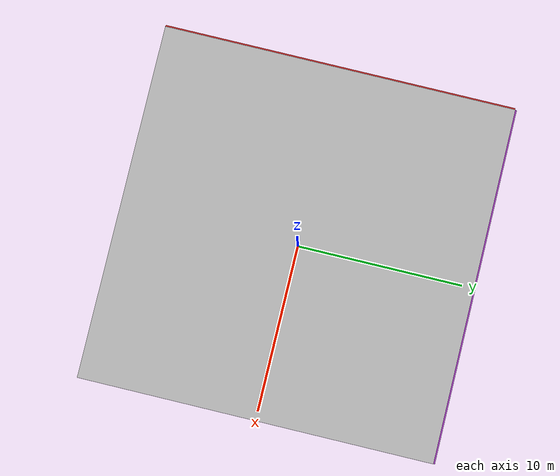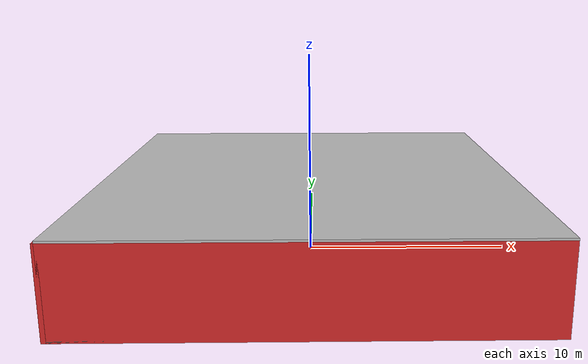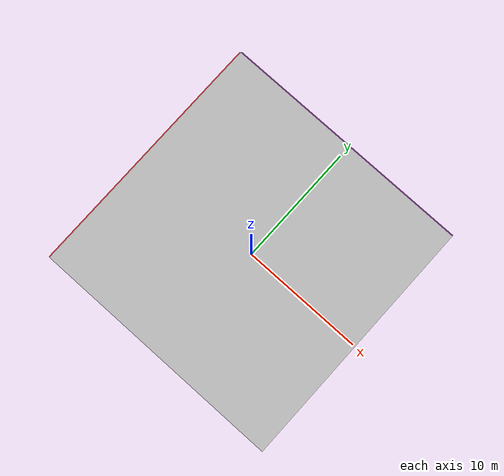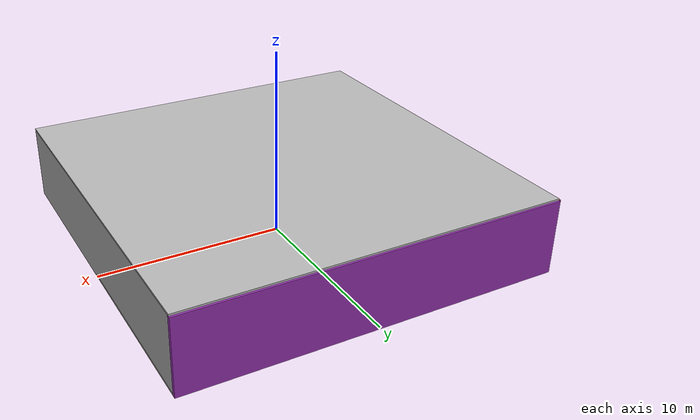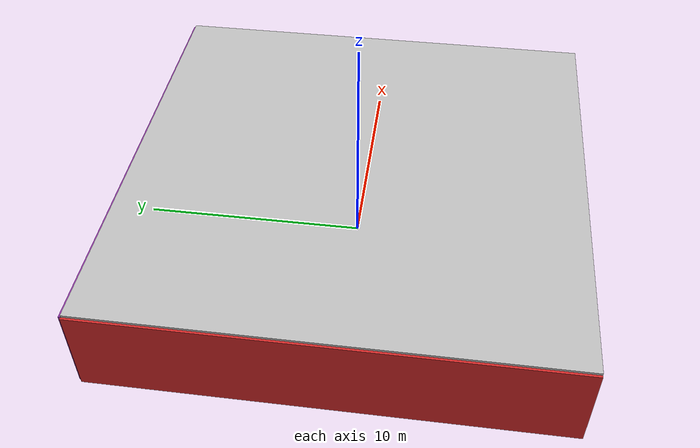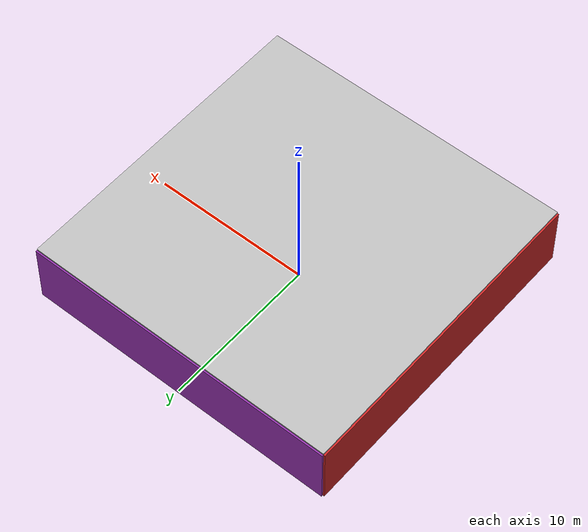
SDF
<sdf version="1.4">
 <world name="default">
  <physics type="ode">
   <max_step_size>0.001</max_step_size>
   <real_time_factor>1</real_time_factor>
   <real_time_update_rate>1000</real_time_update_rate>
   <gravity>0 0 -9.8</gravity>
  </physics>
  <scene><ambient>0.4 0.4 0.4 1</ambient><background>0.7 0.7 0.7 1</background><shadows>1</shadows></scene>
  <model name="Surrounding">
   <static>1</static>
   <link name="Ceiling">
    <collision name="Ceiling_Collision"><geometry><box><size>20 20 0.1</size></box></geometry></collision>
    <visual name="Ceiling_Visual">
     <geometry><box><size>20 20 0.1</size></box></geometry>
     <material>
      <script><uri>file://media/materials/scripts/gazebo.material</uri><name>Gazebo/CloudySky</name></script>
     </material>
    </visual>
    <pose>0 0 4.05 0 0 0</pose>
   </link>
   <link name="Wall_South">
    <collision name="Wall_South_Collision">
     <geometry><box><size>20 0 4</size></box></geometry>
     <pose>0 0 2 0 -0 0</pose>
    </collision>
    <visual name="Wall_South_Visual">
     <pose>0 0 2 0 -0 0</pose>
     <geometry><box><size>20 0 4</size></box></geometry>
     <material>
      <script><uri>file://media/materials/scripts/gazebo.material</uri><name>Gazebo/RedBright</name></script>
     </material>
    </visual>
    <velocity_decay><linear>0</linear><angular>0</angular></velocity_decay>
    <pose>0 -10 0 0 -0 0</pose>
   </link>
   <link name="Wall_East">
    <collision name="Wall_21_Collision">
     <geometry><box><size>20 0 4</size></box></geometry>
     <pose>0 0 2 0 -0 0</pose>
    </collision>
    <visual name="Wall_21_Visual">
     <pose>0 0 2 0 -0 0</pose>
     <geometry><box><size>20 0 4</size></box></geometry>
     <material>
      <script><uri>file://media/materials/scripts/gazebo.material</uri><name>Gazebo/CloudySky</name></script>
     </material>
    </visual>
    <velocity_decay><linear>0</linear><angular>0</angular></velocity_decay>
    <pose>10 0 0 0 -0 1.5708</pose>
   </link>
   <link name="Wall_North">
    <collision name="Wall_22_Collision">
     <geometry><box><size>20 0.2 4</size></box></geometry>
     <pose>0 0 2 0 -0 0</pose>
    </collision>
    <visual name="Wall_22_Visual">
     <pose>0 0 2 0 -0 0</pose>
     <geometry><box><size>20 0.2 4</size></box></geometry>
     <material>
      <script><uri>file://media/materials/scripts/gazebo.material</uri><name>Gazebo/Purple</name></script>
     </material>
    </visual>
    <velocity_decay><linear>0</linear><angular>0</angular></velocity_decay>
    <pose>0 10 0 0 -0 0</pose>
   </link>
   <link name="Wall_West">
    <collision name="Wall_23_Collision">
     <geometry><box><size>20 0.2 4</size></box></geometry>
     <pose>0 0 2 0 -0 0</pose>
    </collision>
    <visual name="Wall_23_Visual">
     <pose>0 0 2 0 -0 0</pose>
     <geometry><box><size>20 0.2 4</size></box></geometry>
     <material>
      <script><uri>file://media/materials/scripts/gazebo.material</uri><name>Gazebo/RedGlow</name></script>
     </material>
    </visual>
    <velocity_decay><linear>0</linear><angular>0</angular></velocity_decay>
    <pose>-10 0 0 0 0 -1.5708</pose>
   </link>
   <link name="Ground_link">
    <collision name="collision">
     <pose>0 0 .05 0 -0 0</pose>
     <geometry><box><size>20 20 0.1</size></box></geometry>
    </collision>
    <visual name="visual">
     <pose>0 0 .05 0 -0 0</pose>
     <geometry><box><size>20 20 0.1</size></box></geometry>
     <material>
      <script><uri>file://media/materials/scripts/gazebo.material</uri><name>Gazebo/PaintedWall</name></script>
     </material>
    </visual>
   </link>
   <static>1</static>
  </model>
  <spherical_coordinates>
   <surface_model>EARTH_WGS84</surface_model>
   <latitude_deg>0</latitude_deg>
   <longitude_deg>0</longitude_deg>
   <elevation>0</elevation>
   <heading_deg>0</heading_deg>
  </spherical_coordinates>
  <light name="lightball_0" type="diffuse">
   <diffuse>0.8 0.8 0.8 1</diffuse>
   <specular>0.2 0.2 0.2 1</specular>
   <attenuation>
    <range>100</range>
    <constant>0.7</constant>
    <linear>0.01</linear>
    <quadratic>0.001</quadratic>
   </attenuation>
   <direction>-0.5 0.1 -0.9</direction>
   <pose>5.26851625984 -9.18327650251 1.10821629476 0 0 0</pose>
  </light>
  <light name="lightball_1" type="diffuse">
   <diffuse>0.8 0.8 0.8 1</diffuse>
   <specular>0.2 0.2 0.2 1</specular>
   <attenuation>
    <range>100</range>
    <constant>0.7</constant>
    <linear>0.01</linear>
    <quadratic>0.001</quadratic>
   </attenuation>
   <direction>-0.5 0.1 -0.9</direction>
   <pose>1.57868532907 -7.17280543782 1.03428552988 0 0 0</pose>
  </light>
  <light name="lightball_2" type="diffuse">
   <diffuse>0.8 0.8 0.8 1</diffuse>
   <specular>0.2 0.2 0.2 1</specular>
   <attenuation>
    <range>100</range>
    <constant>0.7</constant>
    <linear>0.01</linear>
    <quadratic>0.001</quadratic>
   </attenuation>
   <direction>-0.5 0.1 -0.9</direction>
   <pose>1.53363105177 6.3729110595 3.67901607077 0 0 0</pose>
  </light>
  <light name="lightball_3" type="diffuse">
   <diffuse>0.8 0.8 0.8 1</diffuse>
   <specular>0.2 0.2 0.2 1</specular>
   <attenuation>
    <range>100</range>
    <constant>0.7</constant>
    <linear>0.01</linear>
    <quadratic>0.001</quadratic>
   </attenuation>
   <direction>-0.5 0.1 -0.9</direction>
   <pose>-8.32962281951 -9.10767871012 2.15324969714 0 0 0</pose>
  </light>
  <light name="lightball_4" type="diffuse">
   <diffuse>0.8 0.8 0.8 1</diffuse>
   <specular>0.2 0.2 0.2 1</specular>
   <attenuation>
    <range>100</range>
    <constant>0.7</constant>
    <linear>0.01</linear>
    <quadratic>0.001</quadratic>
   </attenuation>
   <direction>-0.5 0.1 -0.9</direction>
   <pose>-7.65261481576 -0.209032258163 2.60282873182 0 0 0</pose>
  </light>
  <light name="lightball_5" type="diffuse">
   <diffuse>0.8 0.8 0.8 1</diffuse>
   <specular>0.2 0.2 0.2 1</specular>
   <attenuation>
    <range>100</range>
    <constant>0.7</constant>
    <linear>0.01</linear>
    <quadratic>0.001</quadratic>
   </attenuation>
   <direction>-0.5 0.1 -0.9</direction>
   <pose>3.46329959984 6.12501179419 2.63373786534 0 0 0</pose>
  </light>
  <light name="lightball_6" type="diffuse">
   <diffuse>0.8 0.8 0.8 1</diffuse>
   <specular>0.2 0.2 0.2 1</specular>
   <attenuation>
    <range>100</range>
    <constant>0.7</constant>
    <linear>0.01</linear>
    <quadratic>0.001</quadratic>
   </attenuation>
   <direction>-0.5 0.1 -0.9</direction>
   <pose>8.89158694683 -9.30350954535 2.4800918687 0 0 0</pose>
  </light>
  <light name="lightball_7" type="diffuse">
   <diffuse>0.8 0.8 0.8 1</diffuse>
   <specular>0.2 0.2 0.2 1</specular>
   <attenuation>
    <range>100</range>
    <constant>0.7</constant>
    <linear>0.01</linear>
    <quadratic>0.001</quadratic>
   </attenuation>
   <direction>-0.5 0.1 -0.9</direction>
   <pose>-4.86852977009 3.00664130889 2.60595969465 0 0 0</pose>
  </light>
  <light name="lightball_8" type="diffuse">
   <diffuse>0.8 0.8 0.8 1</diffuse>
   <specular>0.2 0.2 0.2 1</specular>
   <attenuation>
    <range>100</range>
    <constant>0.7</constant>
    <linear>0.01</linear>
    <quadratic>0.001</quadratic>
   </attenuation>
   <direction>-0.5 0.1 -0.9</direction>
   <pose>5.86725624752 2.27157168423 1.93884691623 0 0 0</pose>
  </light>
  <light name="lightball_9" type="diffuse">
   <diffuse>0.8 0.8 0.8 1</diffuse>
   <specular>0.2 0.2 0.2 1</specular>
   <attenuation>
    <range>100</range>
    <constant>0.7</constant>
    <linear>0.01</linear>
    <quadratic>0.001</quadratic>
   </attenuation>
   <direction>-0.5 0.1 -0.9</direction>
   <pose>-4.87580562206 -5.23230177752 2.93505281657 0 0 0</pose>
  </light>
  <light name="lightball_10" type="diffuse">
   <diffuse>0.8 0.8 0.8 1</diffuse>
   <specular>0.2 0.2 0.2 1</specular>
   <attenuation>
    <range>100</range>
    <constant>0.7</constant>
    <linear>0.01</linear>
    <quadratic>0.001</quadratic>
   </attenuation>
   <direction>-0.5 0.1 -0.9</direction>
   <pose>-4.29889751798 -3.62531354503 2.45352285751 0 0 0</pose>
  </light>
  <light name="lightball_11" type="diffuse">
   <diffuse>0.8 0.8 0.8 1</diffuse>
   <specular>0.2 0.2 0.2 1</specular>
   <attenuation>
    <range>100</range>
    <constant>0.7</constant>
    <linear>0.01</linear>
    <quadratic>0.001</quadratic>
   </attenuation>
   <direction>-0.5 0.1 -0.9</direction>
   <pose>-8.76656300646 0.0338819908318 3.03532105926 0 0 0</pose>
  </light>
  <light name="lightball_12" type="diffuse">
   <diffuse>0.8 0.8 0.8 1</diffuse>
   <specular>0.2 0.2 0.2 1</specular>
   <attenuation>
    <range>100</range>
    <constant>0.7</constant>
    <linear>0.01</linear>
    <quadratic>0.001</quadratic>
   </attenuation>
   <direction>-0.5 0.1 -0.9</direction>
   <pose>3.60331332662 1.81531315925 3.1471708768 0 0 0</pose>
  </light>
  <light name="lightball_13" type="diffuse">
   <diffuse>0.8 0.8 0.8 1</diffuse>
   <specular>0.2 0.2 0.2 1</specular>
   <attenuation>
    <range>100</range>
    <constant>0.7</constant>
    <linear>0.01</linear>
    <quadratic>0.001</quadratic>
   </attenuation>
   <direction>-0.5 0.1 -0.9</direction>
   <pose>6.87741503959 -1.7782677724 3.39942116437 0 0 0</pose>
  </light>
  <include><uri>model://cabinet</uri><pose>2.45006116745 4.19303203209 0 0 0 3.05367724526</pose></include>
 </world>
</sdf>

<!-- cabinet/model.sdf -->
<sdf version="1.5">
  <model name="cabinet">
    <static>true</static>
    <link name="cabinet_bottom_plate">
      <inertial>
        <pose>0 0 -1 0 0 0</pose>
        <inertia>
          <ixx>2.050000</ixx>
          <ixy>0</ixy>
          <ixz>0</ixz>
          <iyy>2.050000</iyy>
          <iyz>0</iyz>
          <izz>2.050000</izz>
        </inertia>
        <mass>25.000000</mass>
      </inertial>
      <collision name="cabinet_bottom_plate_geom">
        <pose>0 0 0.010000 0 0 0</pose>
        <geometry>
          <box>
            <size>0.450000 0.450000 0.020000</size>
          </box>
        </geometry>
      </collision>
      <visual name="cabinet_bottom_plate_geom_visual">
        <pose>0 0 0.010000 0 0 0</pose>
        <geometry>
          <box>
            <size>0.450000 0.450000 0.020000</size>
          </box>
        </geometry>
        <material>
          <script>
            <uri>model://media/materials/scripts/gazebo.material</uri>
            <name>Gazebo/Wood</name>
          </script>
        </material>
      </visual>
      <collision name="cabinet_bottom_plate_geom_cabinet_back_plate">
        <pose>0.235000 0 0.510000 0 0 0</pose>
        <geometry>
          <box>
            <size>0.020000 0.450000 1.020000</size>
          </box>
        </geometry>
      </collision>
      <visual name="cabinet_bottom_plate_geom_cabinet_back_plate_visual">
        <pose>0.235000 0 0.510000 0 0 0</pose>
        <geometry>
          <box>
            <size>0.020000 0.450000 1.020000</size>
          </box>
        </geometry>
        <material>
          <script>
            <uri>model://media/materials/scripts/gazebo.material</uri>
            <name>Gazebo/Wood</name>
          </script>
        </material>
      </visual>
      <collision name="cabinet_bottom_plate_geom_cabinet_left_plate">
        <pose>0 0.235000 0.510000 0 0 0</pose>
        <geometry>
          <box>
            <size>0.450000 0.020000 1.020000</size>
          </box>
        </geometry>
      </collision>
      <visual name="cabinet_bottom_plate_geom_cabinet_left_plate_visual">
        <pose>0 0.235000 0.510000 0 0 0</pose>
        <geometry>
          <box>
            <size>0.450000 0.020000 1.020000</size>
          </box>
        </geometry>
        <material>
          <script>
            <uri>model://media/materials/scripts/gazebo.material</uri>
            <name>Gazebo/Wood</name>
          </script>
        </material>
      </visual>
      <collision name="cabinet_bottom_plate_geom_cabinet_middle_plate">
        <pose>0 0 0.510000 0 0 0</pose>
        <geometry>
          <box>
            <size>0.450000 0.450000 0.020000</size>
          </box>
        </geometry>
      </collision>
      <visual name="cabinet_bottom_plate_geom_cabinet_middle_plate_visual">
        <pose>0 0 0.510000 0 0 0</pose>
        <geometry>
          <box>
            <size>0.450000 0.450000 0.020000</size>
          </box>
        </geometry>
        <material>
          <script>
            <uri>model://media/materials/scripts/gazebo.material</uri>
            <name>Gazebo/Wood</name>
          </script>
        </material>
      </visual>
      <collision name="cabinet_bottom_plate_geom_cabinet_right_plate">
        <pose>0 -0.235000 0.510000 0 0 0</pose>
        <geometry>
          <box>
            <size>0.450000 0.020000 1.020000</size>
          </box>
        </geometry>
      </collision>
      <visual name="cabinet_bottom_plate_geom_cabinet_right_plate_visual">
        <pose>0 -0.235000 0.510000 0 0 0</pose>
        <geometry>
          <box>
            <size>0.450000 0.020000 1.020000</size>
          </box>
        </geometry>
        <material>
          <script>
            <uri>model://media/materials/scripts/gazebo.material</uri>
            <name>Gazebo/Wood</name>
          </script>
        </material>
      </visual>
      <collision name="cabinet_bottom_plate_geom_cabinet_top_plate">
        <pose>0 0 1.010000 0 0 0</pose>
        <geometry>
          <box>
            <size>0.450000 0.450000 0.020000</size>
          </box>
        </geometry>
      </collision>
      <visual name="cabinet_bottom_plate_geom_cabinet_top_plate_visual">
        <pose>0 0 1.010000 0 0 0</pose>
        <geometry>
          <box>
            <size>0.450000 0.450000 0.020000</size>
          </box>
        </geometry>
        <material>
          <script>
            <uri>model://media/materials/scripts/gazebo.material</uri>
            <name>Gazebo/Wood</name>
          </script>
        </material>
      </visual>
    </link>
  </model>
</sdf>
